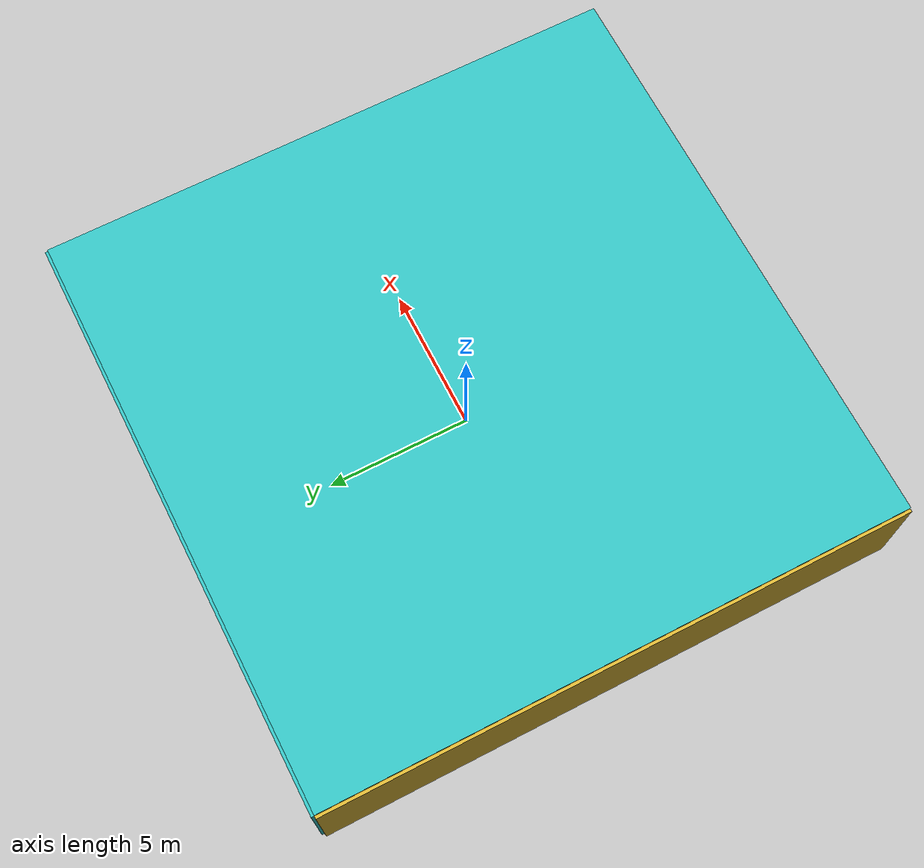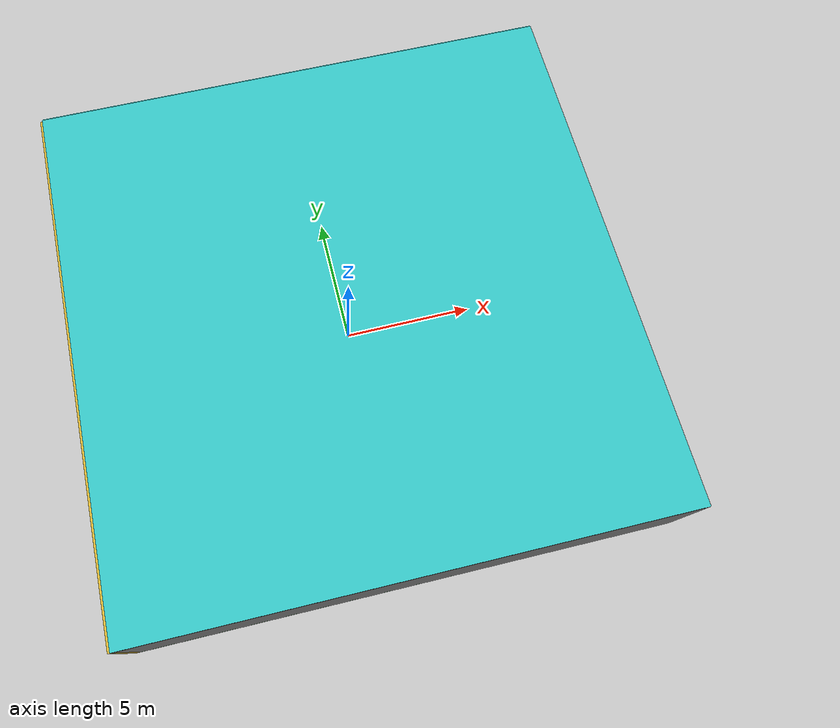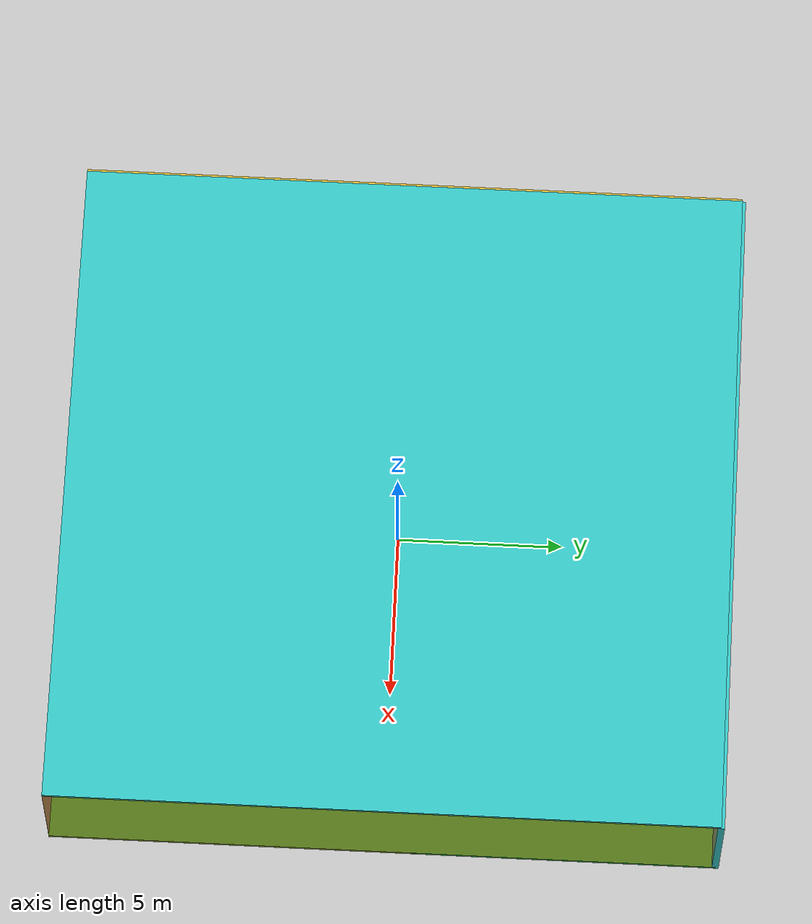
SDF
<sdf version="1.4">
 <world name="default">
  <physics type="ode">
   <max_step_size>0.001</max_step_size>
   <real_time_factor>1</real_time_factor>
   <real_time_update_rate>1000</real_time_update_rate>
   <gravity>0 0 -9.8</gravity>
  </physics>
  <scene><ambient>0.4 0.4 0.4 1</ambient><background>0.7 0.7 0.7 1</background><shadows>1</shadows></scene>
  <model name="Surrounding">
   <static>1</static>
   <link name="Ceiling">
    <collision name="Ceiling_Collision"><geometry><box><size>20 20 0.1</size></box></geometry></collision>
    <visual name="Ceiling_Visual">
     <geometry><box><size>20 20 0.1</size></box></geometry>
     <material>
      <script>
       <uri>file://media/materials/scripts/gazebo.material</uri>
       <name>Gazebo/TurquoiseGlowOutline</name>
      </script>
     </material>
    </visual>
    <pose>0 0 4.05 0 0 0</pose>
   </link>
   <link name="Wall_South">
    <collision name="Wall_South_Collision">
     <geometry><box><size>20 0 4</size></box></geometry>
     <pose>0 0 2 0 -0 0</pose>
    </collision>
    <visual name="Wall_South_Visual">
     <pose>0 0 2 0 -0 0</pose>
     <geometry><box><size>20 0 4</size></box></geometry>
     <material>
      <script><uri>file://media/materials/scripts/gazebo.material</uri><name>Gazebo/GreyGradientSky</name></script>
     </material>
    </visual>
    <velocity_decay><linear>0</linear><angular>0</angular></velocity_decay>
    <pose>0 -10 0 0 -0 0</pose>
   </link>
   <link name="Wall_East">
    <collision name="Wall_21_Collision">
     <geometry><box><size>20 0 4</size></box></geometry>
     <pose>0 0 2 0 -0 0</pose>
    </collision>
    <visual name="Wall_21_Visual">
     <pose>0 0 2 0 -0 0</pose>
     <geometry><box><size>20 0 4</size></box></geometry>
     <material>
      <script>
       <uri>file://media/materials/scripts/gazebo.material</uri>
       <name>Gazebo/OrangeTransparent</name>
      </script>
     </material>
    </visual>
    <velocity_decay><linear>0</linear><angular>0</angular></velocity_decay>
    <pose>10 0 0 0 -0 1.5708</pose>
   </link>
   <link name="Wall_North">
    <collision name="Wall_22_Collision">
     <geometry><box><size>20 0.2 4</size></box></geometry>
     <pose>0 0 2 0 -0 0</pose>
    </collision>
    <visual name="Wall_22_Visual">
     <pose>0 0 2 0 -0 0</pose>
     <geometry><box><size>20 0.2 4</size></box></geometry>
     <material>
      <script><uri>file://media/materials/scripts/gazebo.material</uri><name>Gazebo/Turquoise</name></script>
     </material>
    </visual>
    <velocity_decay><linear>0</linear><angular>0</angular></velocity_decay>
    <pose>0 10 0 0 -0 0</pose>
   </link>
   <link name="Wall_West">
    <collision name="Wall_23_Collision">
     <geometry><box><size>20 0.2 4</size></box></geometry>
     <pose>0 0 2 0 -0 0</pose>
    </collision>
    <visual name="Wall_23_Visual">
     <pose>0 0 2 0 -0 0</pose>
     <geometry><box><size>20 0.2 4</size></box></geometry>
     <material>
      <script><uri>file://media/materials/scripts/gazebo.material</uri><name>Gazebo/Gold</name></script>
     </material>
    </visual>
    <velocity_decay><linear>0</linear><angular>0</angular></velocity_decay>
    <pose>-10 0 0 0 0 -1.5708</pose>
   </link>
   <link name="Ground_link">
    <collision name="collision">
     <pose>0 0 .05 0 -0 0</pose>
     <geometry><box><size>20 20 0.1</size></box></geometry>
    </collision>
    <visual name="visual">
     <pose>0 0 .05 0 -0 0</pose>
     <geometry><box><size>20 20 0.1</size></box></geometry>
     <material>
      <script><uri>file://media/materials/scripts/gazebo.material</uri><name>Gazebo/Green</name></script>
     </material>
    </visual>
   </link>
   <static>1</static>
  </model>
  <spherical_coordinates>
   <surface_model>EARTH_WGS84</surface_model>
   <latitude_deg>0</latitude_deg>
   <longitude_deg>0</longitude_deg>
   <elevation>0</elevation>
   <heading_deg>0</heading_deg>
  </spherical_coordinates>
  <light name="lightball_0" type="diffuse">
   <diffuse>0.8 0.8 0.8 1</diffuse>
   <specular>0.2 0.2 0.2 1</specular>
   <attenuation>
    <range>100</range>
    <constant>0.7</constant>
    <linear>0.01</linear>
    <quadratic>0.001</quadratic>
   </attenuation>
   <direction>-0.5 0.1 -0.9</direction>
   <pose>-0.298043326123 9.24466438011 2.74819361609 0 0 0</pose>
  </light>
  <light name="lightball_1" type="diffuse">
   <diffuse>0.8 0.8 0.8 1</diffuse>
   <specular>0.2 0.2 0.2 1</specular>
   <attenuation>
    <range>100</range>
    <constant>0.7</constant>
    <linear>0.01</linear>
    <quadratic>0.001</quadratic>
   </attenuation>
   <direction>-0.5 0.1 -0.9</direction>
   <pose>3.84123759109 5.08141117181 3.15744605499 0 0 0</pose>
  </light>
  <light name="lightball_2" type="diffuse">
   <diffuse>0.8 0.8 0.8 1</diffuse>
   <specular>0.2 0.2 0.2 1</specular>
   <attenuation>
    <range>100</range>
    <constant>0.7</constant>
    <linear>0.01</linear>
    <quadratic>0.001</quadratic>
   </attenuation>
   <direction>-0.5 0.1 -0.9</direction>
   <pose>-4.9818321924 7.61028134865 0.672835043423 0 0 0</pose>
  </light>
  <light name="lightball_3" type="diffuse">
   <diffuse>0.8 0.8 0.8 1</diffuse>
   <specular>0.2 0.2 0.2 1</specular>
   <attenuation>
    <range>100</range>
    <constant>0.7</constant>
    <linear>0.01</linear>
    <quadratic>0.001</quadratic>
   </attenuation>
   <direction>-0.5 0.1 -0.9</direction>
   <pose>4.20383667376 -8.24623304441 3.27626642659 0 0 0</pose>
  </light>
  <light name="lightball_4" type="diffuse">
   <diffuse>0.8 0.8 0.8 1</diffuse>
   <specular>0.2 0.2 0.2 1</specular>
   <attenuation>
    <range>100</range>
    <constant>0.7</constant>
    <linear>0.01</linear>
    <quadratic>0.001</quadratic>
   </attenuation>
   <direction>-0.5 0.1 -0.9</direction>
   <pose>-8.31996841579 3.0544247666 2.93074546275 0 0 0</pose>
  </light>
  <light name="lightball_5" type="diffuse">
   <diffuse>0.8 0.8 0.8 1</diffuse>
   <specular>0.2 0.2 0.2 1</specular>
   <attenuation>
    <range>100</range>
    <constant>0.7</constant>
    <linear>0.01</linear>
    <quadratic>0.001</quadratic>
   </attenuation>
   <direction>-0.5 0.1 -0.9</direction>
   <pose>-7.27246496947 7.26690373801 0.545739657764 0 0 0</pose>
  </light>
  <light name="lightball_6" type="diffuse">
   <diffuse>0.8 0.8 0.8 1</diffuse>
   <specular>0.2 0.2 0.2 1</specular>
   <attenuation>
    <range>100</range>
    <constant>0.7</constant>
    <linear>0.01</linear>
    <quadratic>0.001</quadratic>
   </attenuation>
   <direction>-0.5 0.1 -0.9</direction>
   <pose>-4.02874518073 -2.46447417532 3.25143179976 0 0 0</pose>
  </light>
  <light name="lightball_7" type="diffuse">
   <diffuse>0.8 0.8 0.8 1</diffuse>
   <specular>0.2 0.2 0.2 1</specular>
   <attenuation>
    <range>100</range>
    <constant>0.7</constant>
    <linear>0.01</linear>
    <quadratic>0.001</quadratic>
   </attenuation>
   <direction>-0.5 0.1 -0.9</direction>
   <pose>1.14551413112 8.46393130022 3.7494430345 0 0 0</pose>
  </light>
  <light name="lightball_8" type="diffuse">
   <diffuse>0.8 0.8 0.8 1</diffuse>
   <specular>0.2 0.2 0.2 1</specular>
   <attenuation>
    <range>100</range>
    <constant>0.7</constant>
    <linear>0.01</linear>
    <quadratic>0.001</quadratic>
   </attenuation>
   <direction>-0.5 0.1 -0.9</direction>
   <pose>-0.824040987092 8.66085656257 2.41577793676 0 0 0</pose>
  </light>
  <include><uri>model://cabinet</uri><pose>-3.849916551 -2.42605303791 0 0 0 1.51637872856</pose></include>
  <include>
   <uri>model://construction_cone</uri>
   <pose>-5.23207595101 6.9887829154 0 0 0 1.7340422308</pose>
  </include>
  <include>
   <uri>model://robocup_3Dsim_goal</uri>
   <pose>-1.99506242163 -6.47378472518 0 0 0 0.420420243999</pose>
  </include>
  <include>
   <uri>model://robocup_3Dsim_goal</uri>
   <pose>-0.607687567598 -3.49199634295 0 0 0 0.482245723711</pose>
  </include>
  <include>
   <uri>model://robocup_3Dsim_goal</uri>
   <pose>-1.68338142239 1.61020097173 0 0 0 1.65026864648</pose>
  </include>
  <include><uri>model://cabinet</uri><pose>1.05896926312 4.15230658675 0 0 0 1.13176590538</pose></include>
  <include><uri>model://table</uri><pose>3.76180997905 5.63825293293 0 0 0 1.70057303844</pose></include>
 </world>
</sdf>

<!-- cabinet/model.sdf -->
<sdf version="1.5">
  <model name="cabinet">
    <static>true</static>
    <link name="cabinet_bottom_plate">
      <inertial>
        <pose>0 0 -1 0 0 0</pose>
        <inertia>
          <ixx>2.050000</ixx>
          <ixy>0</ixy>
          <ixz>0</ixz>
          <iyy>2.050000</iyy>
          <iyz>0</iyz>
          <izz>2.050000</izz>
        </inertia>
        <mass>25.000000</mass>
      </inertial>
      <collision name="cabinet_bottom_plate_geom">
        <pose>0 0 0.010000 0 0 0</pose>
        <geometry>
          <box>
            <size>0.450000 0.450000 0.020000</size>
          </box>
        </geometry>
      </collision>
      <visual name="cabinet_bottom_plate_geom_visual">
        <pose>0 0 0.010000 0 0 0</pose>
        <geometry>
          <box>
            <size>0.450000 0.450000 0.020000</size>
          </box>
        </geometry>
        <material>
          <script>
            <uri>model://media/materials/scripts/gazebo.material</uri>
            <name>Gazebo/Wood</name>
          </script>
        </material>
      </visual>
      <collision name="cabinet_bottom_plate_geom_cabinet_back_plate">
        <pose>0.235000 0 0.510000 0 0 0</pose>
        <geometry>
          <box>
            <size>0.020000 0.450000 1.020000</size>
          </box>
        </geometry>
      </collision>
      <visual name="cabinet_bottom_plate_geom_cabinet_back_plate_visual">
        <pose>0.235000 0 0.510000 0 0 0</pose>
        <geometry>
          <box>
            <size>0.020000 0.450000 1.020000</size>
          </box>
        </geometry>
        <material>
          <script>
            <uri>model://media/materials/scripts/gazebo.material</uri>
            <name>Gazebo/Wood</name>
          </script>
        </material>
      </visual>
      <collision name="cabinet_bottom_plate_geom_cabinet_left_plate">
        <pose>0 0.235000 0.510000 0 0 0</pose>
        <geometry>
          <box>
            <size>0.450000 0.020000 1.020000</size>
          </box>
        </geometry>
      </collision>
      <visual name="cabinet_bottom_plate_geom_cabinet_left_plate_visual">
        <pose>0 0.235000 0.510000 0 0 0</pose>
        <geometry>
          <box>
            <size>0.450000 0.020000 1.020000</size>
          </box>
        </geometry>
        <material>
          <script>
            <uri>model://media/materials/scripts/gazebo.material</uri>
            <name>Gazebo/Wood</name>
          </script>
        </material>
      </visual>
      <collision name="cabinet_bottom_plate_geom_cabinet_middle_plate">
        <pose>0 0 0.510000 0 0 0</pose>
        <geometry>
          <box>
            <size>0.450000 0.450000 0.020000</size>
          </box>
        </geometry>
      </collision>
      <visual name="cabinet_bottom_plate_geom_cabinet_middle_plate_visual">
        <pose>0 0 0.510000 0 0 0</pose>
        <geometry>
          <box>
            <size>0.450000 0.450000 0.020000</size>
          </box>
        </geometry>
        <material>
          <script>
            <uri>model://media/materials/scripts/gazebo.material</uri>
            <name>Gazebo/Wood</name>
          </script>
        </material>
      </visual>
      <collision name="cabinet_bottom_plate_geom_cabinet_right_plate">
        <pose>0 -0.235000 0.510000 0 0 0</pose>
        <geometry>
          <box>
            <size>0.450000 0.020000 1.020000</size>
          </box>
        </geometry>
      </collision>
      <visual name="cabinet_bottom_plate_geom_cabinet_right_plate_visual">
        <pose>0 -0.235000 0.510000 0 0 0</pose>
        <geometry>
          <box>
            <size>0.450000 0.020000 1.020000</size>
          </box>
        </geometry>
        <material>
          <script>
            <uri>model://media/materials/scripts/gazebo.material</uri>
            <name>Gazebo/Wood</name>
          </script>
        </material>
      </visual>
      <collision name="cabinet_bottom_plate_geom_cabinet_top_plate">
        <pose>0 0 1.010000 0 0 0</pose>
        <geometry>
          <box>
            <size>0.450000 0.450000 0.020000</size>
          </box>
        </geometry>
      </collision>
      <visual name="cabinet_bottom_plate_geom_cabinet_top_plate_visual">
        <pose>0 0 1.010000 0 0 0</pose>
        <geometry>
          <box>
            <size>0.450000 0.450000 0.020000</size>
          </box>
        </geometry>
        <material>
          <script>
            <uri>model://media/materials/scripts/gazebo.material</uri>
            <name>Gazebo/Wood</name>
          </script>
        </material>
      </visual>
    </link>
  </model>
</sdf>

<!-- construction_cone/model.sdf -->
<sdf version="1.5">
  <model name="Construction Cone">
    <link name="link">
      <collision name="collision">
        <geometry>
          <mesh>
            <scale>10 10 10</scale>
            <uri>file://isr-testbed/construction_cone/meshes/construction_cone.dae</uri>
          </mesh>
        </geometry>
      </collision>
      <visual name="visual">
        <geometry>
          <mesh>
            <scale>10 10 10</scale>
            <uri>file://isr-testbed/construction_cone/meshes/construction_cone.dae</uri>
          </mesh>
        </geometry>
      </visual>
    </link>
  </model>
</sdf>

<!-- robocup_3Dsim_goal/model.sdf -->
<sdf version="1.5">
  <model name="robocup_3d_goal">
    <static>true</static>
    <link name="left_post">
      <pose>0 1.05 0.45 0 0 0</pose>
      <collision name="collision">
        <geometry>
          <cylinder>
            <radius>0.05</radius>
            <length>0.9</length>
          </cylinder>
        </geometry>
      </collision>
      <visual name="visual">
        <geometry>
          <cylinder>
            <radius>0.05</radius>
            <length>0.9</length>
          </cylinder>
        </geometry>
        <material>
          <script>
            <uri>file://media/materials/scripts/gazebo.material</uri>
            <name>Gazebo/ZincYellow</name>
          </script>
        </material>
      </visual>
    </link>
    <link name="left_support_horiz_lower">
      <pose>0.30 1.05 0.01 0 0 0</pose>
      <collision name="collision">
        <geometry>
          <box>
            <size>0.50 0.02 0.02</size>
          </box>
        </geometry>
      </collision>
      <visual name="visual">
        <geometry>
          <box>
            <size>0.50 0.02 0.02</size>
          </box>
        </geometry>
        <material>
          <script>
            <uri>file://media/materials/scripts/gazebo.material</uri>
            <name>Gazebo/White</name>
          </script>
        </material>
      </visual>
    </link>
    <link name="left_support_horiz_upper">
      <pose>0.30 1.05 0.79 0 0 0</pose>
      <collision name="collision">
        <geometry>
          <box>
            <size>0.50 0.02 0.02</size>
          </box>
        </geometry>
      </collision>
      <visual name="visual">
        <geometry>
          <box>
            <size>0.50 0.02 0.02</size>
          </box>
        </geometry>
        <material>
          <script>
            <uri>file://media/materials/scripts/gazebo.material</uri>
            <name>Gazebo/White</name>
          </script>
        </material>
      </visual>
    </link>
    <link name="left_support_vertical">
      <pose>0.56 1.05 0.4 0 1.5708 0</pose>
      <collision name="collision">
        <geometry>
          <box>
            <size>0.80 0.02 0.02</size>
          </box>
        </geometry>
      </collision>
      <visual name="visual">
        <geometry>
          <box>
            <size>0.80 0.02 0.02</size>
          </box>
        </geometry>
        <material>
          <script>
            <uri>file://media/materials/scripts/gazebo.material</uri>
            <name>Gazebo/White</name>
          </script>
        </material>
      </visual>
    </link>
    <link name="right_support_horiz_lower">
      <pose>0.30 -1.05 0.01 0 0 0</pose>
      <collision name="collision">
        <geometry>
          <box>
            <size>0.50 0.02 0.02</size>
          </box>
        </geometry>
      </collision>
      <visual name="visual">
        <geometry>
          <box>
            <size>0.50 0.02 0.02</size>
          </box>
        </geometry>
        <material>
          <script>
            <uri>file://media/materials/scripts/gazebo.material</uri>
            <name>Gazebo/White</name>
          </script>
        </material>
      </visual>
    </link>
    <link name="right_support_horiz_upper">
      <pose>0.30 -1.05 0.79 0 0 0</pose>
      <collision name="collision">
        <geometry>
          <box>
            <size>0.50 0.02 0.02</size>
          </box>
        </geometry>
      </collision>
      <visual name="visual">
        <geometry>
          <box>
            <size>0.50 0.02 0.02</size>
          </box>
        </geometry>
        <material>
          <script>
            <uri>file://media/materials/scripts/gazebo.material</uri>
            <name>Gazebo/White</name>
          </script>
        </material>
      </visual>
    </link>
    <link name="right_support_vertical">
      <pose>0.56 -1.05 0.4 0 1.5708 0</pose>
      <collision name="collision">
        <geometry>
          <box>
            <size>0.80 0.02 0.02</size>
          </box>
        </geometry>
      </collision>
      <visual name="visual">
        <geometry>
          <box>
            <size>0.80 0.02 0.02</size>
          </box>
        </geometry>
        <material>
          <script>
            <uri>file://media/materials/scripts/gazebo.material</uri>
            <name>Gazebo/White</name>
          </script>
        </material>
      </visual>
    </link>
    <link name="center_support_horiz_lower">
      <pose>0.56 0 0.01 0 1.5708 0</pose>
      <collision name="collision">
        <geometry>
          <box>
            <size>0.02 2.08 0.02</size>
          </box>
        </geometry>
      </collision>
      <visual name="visual">
        <geometry>
          <box>
            <size>0.02 2.08 0.02</size>
          </box>
        </geometry>
        <material>
          <script>
            <uri>file://media/materials/scripts/gazebo.material</uri>
            <name>Gazebo/White</name>
          </script>
        </material>
      </visual>
    </link>
    <link name="center_support_horiz_upper">
      <pose>0.56 0 0.79 0 1.5708 0</pose>
      <collision name="collision">
        <geometry>
          <box>
            <size>0.02 2.08 0.02</size>
          </box>
        </geometry>
      </collision>
      <visual name="visual">
        <geometry>
          <box>
            <size>0.02 2.08 0.02</size>
          </box>
        </geometry>
        <material>
          <script>
            <uri>file://media/materials/scripts/gazebo.material</uri>
            <name>Gazebo/White</name>
          </script>
        </material>
      </visual>
    </link>
    <link name="right_post">
      <pose>0 -1.05 0.45 0 0 0</pose>
      <collision name="collision">
        <geometry>
          <cylinder>
            <radius>0.05</radius>
            <length>0.9</length>
          </cylinder>
        </geometry>
      </collision>
      <visual name="visual">
        <geometry>
          <cylinder>
            <radius>0.05</radius>
            <length>0.9</length>
          </cylinder>
        </geometry>
        <material>
          <script>
            <uri>file://media/materials/scripts/gazebo.material</uri>
            <name>Gazebo/ZincYellow</name>
          </script>
        </material>
      </visual>
    </link>
    <link name="crossbar">
      <pose>0 0 0.85 1.57 1.57 0</pose>
      <collision name="collision">
        <geometry>
          <cylinder>
            <radius>0.05</radius>
            <length>2.0</length>
          </cylinder>
        </geometry>
      </collision>
      <visual name="visual">
        <geometry>
          <cylinder>
            <radius>0.05</radius>
            <length>2.0</length>
          </cylinder>
        </geometry>
        <material>
          <script>
            <uri>file://media/materials/scripts/gazebo.material</uri>
            <name>Gazebo/ZincYellow</name>
          </script>
        </material>
      </visual>
    </link>
    <link name="center_net">
      <pose>0.56 0 0.40 0 0 0</pose>
      <collision name="collision">
        <geometry>
          <box>
            <size>0.01 2.1 0.80</size>
          </box>
        </geometry>
      </collision>
      <visual name="visual">
        <geometry>
          <box>
            <size>0.01 2.1 0.80</size>
          </box>
        </geometry>
        <material>
          <script>
            <uri>model://../model_source/models/robocup09_spl_field/materials/scripts/</uri>
            <uri>model://../model_source/models/robocup09_spl_field/materials/textures/</uri>
            <name>RoboCup/Net</name>
          </script>
        </material>
      </visual>
    </link>
    <link name="left_net">
      <pose>0.30 1.05 0.40 0 0 0</pose>
      <collision name="collision">
        <geometry>
          <box>
            <size>0.50 0.01 0.76</size>
          </box>
        </geometry>
      </collision>
      <visual name="visual">
        <geometry>
          <box>
            <size>0.50 0.01 0.76</size>
          </box>
        </geometry>
        <material>
          <script>
            <uri>model://../model_source/models/robocup09_spl_field/materials/scripts/</uri>
            <uri>model://../model_source/models/robocup09_spl_field/materials/textures/</uri>
            <name>RoboCup/Net</name>
          </script>
        </material>
      </visual>
    </link>
    <link name="right_net">
      <pose>0.30 -1.05 0.40 0 0 0</pose>
      <collision name="collision">
        <geometry>
          <box>
            <size>0.50 0.01 0.76</size>
          </box>
        </geometry>
      </collision>
      <visual name="visual">
        <geometry>
          <box>
            <size>0.50 0.01 0.76</size>
          </box>
        </geometry>
        <material>
          <script>
            <uri>model://../model_source/models/robocup09_spl_field/materials/scripts/</uri>
            <uri>model://../model_source/models/robocup09_spl_field/materials/textures/</uri>
            <name>RoboCup/Net</name>
          </script>
        </material>
      </visual>
    </link>
  </model>
</sdf>

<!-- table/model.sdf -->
<sdf version="1.5">
  <model name="table">
    <static>true</static>
    <link name="link">
      <collision name="surface">
        <pose>0 0 1.0 0 0 0</pose>
        <geometry>
          <box>
            <size>1.5 0.8 0.03</size>
          </box>
        </geometry>
        <surface>
          <friction>
            <ode>
              <mu>0.6</mu>
              <mu2>0.6</mu2>
            </ode>
          </friction>
        </surface>
      </collision>
      <visual name="visual1">
        <pose>0 0 1.0 0 0 0</pose>
        <geometry>
          <box>
            <size>1.5 0.8 0.03</size>
          </box>
        </geometry>
        <material>
          <script>
            <uri>model://media/materials/scripts/gazebo.material</uri>
            <name>Gazebo/Wood</name>
          </script>
        </material>
      </visual>
      <collision name="front_left_leg">
        <pose>0.68 0.38 0.5 0 0 0</pose>
        <geometry>
          <cylinder>
            <radius>0.02</radius>
            <length>1.0</length>
          </cylinder>
        </geometry>
      </collision>
      <visual name="front_left_leg">
        <pose>0.68 0.38 0.5 0 0 0</pose>
        <geometry>
          <cylinder>
            <radius>0.02</radius>
            <length>1.0</length>
          </cylinder>
        </geometry>
        <material>
          <script>
            <uri>model://media/materials/scripts/gazebo.material</uri>
            <name>Gazebo/Grey</name>
          </script>
        </material>
      </visual>
      <collision name="front_right_leg">
        <pose>0.68 -0.38 0.5 0 0 0</pose>
        <geometry>
          <cylinder>
            <radius>0.02</radius>
            <length>1.0</length>
          </cylinder>
        </geometry>
      </collision>
      <visual name="front_right_leg">
        <pose>0.68 -0.38 0.5 0 0 0</pose>
        <geometry>
          <cylinder>
            <radius>0.02</radius>
            <length>1.0</length>
          </cylinder>
        </geometry>
        <material>
          <script>
            <uri>model://media/materials/scripts/gazebo.material</uri>
            <name>Gazebo/Grey</name>
          </script>
        </material>
      </visual>
      <collision name="back_right_leg">
        <pose>-0.68 -0.38 0.5 0 0 0</pose>
        <geometry>
          <cylinder>
            <radius>0.02</radius>
            <length>1.0</length>
          </cylinder>
        </geometry>
      </collision>
      <visual name="back_right_leg">
        <pose>-0.68 -0.38 0.5 0 0 0</pose>
        <geometry>
          <cylinder>
            <radius>0.02</radius>
            <length>1.0</length>
          </cylinder>
        </geometry>
        <material>
          <script>
            <uri>model://media/materials/scripts/gazebo.material</uri>
            <name>Gazebo/Grey</name>
          </script>
        </material>
      </visual>
      <collision name="back_left_leg">
        <pose>-0.68 0.38 0.5 0 0 0</pose>
        <geometry>
          <cylinder>
            <radius>0.02</radius>
            <length>1.0</length>
          </cylinder>
        </geometry>
      </collision>
      <visual name="back_left_leg">
        <pose>-0.68 0.38 0.5 0 0 0</pose>
        <geometry>
          <cylinder>
            <radius>0.02</radius>
            <length>1.0</length>
          </cylinder>
        </geometry>
        <material>
          <script>
            <uri>model://media/materials/scripts/gazebo.material</uri>
            <name>Gazebo/Grey</name>
          </script>
        </material>
      </visual>
    </link>
  </model>
</sdf>
